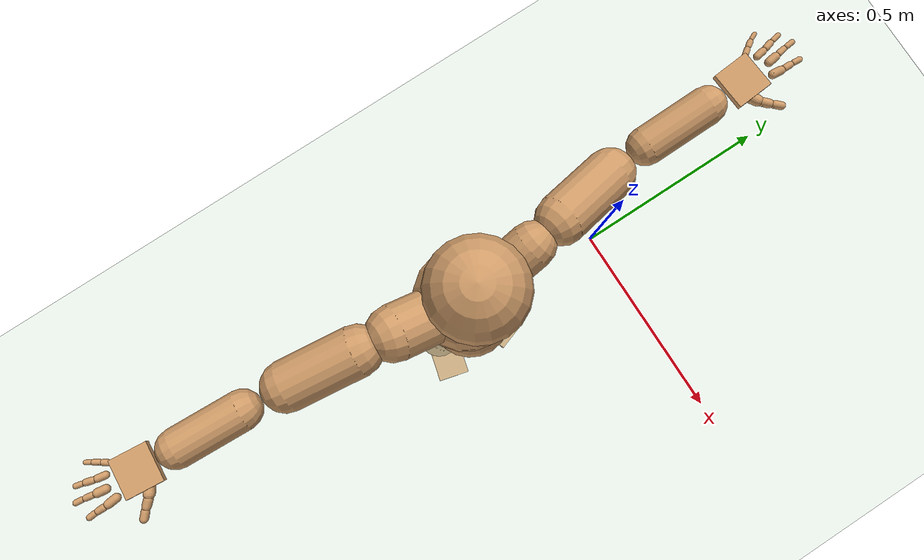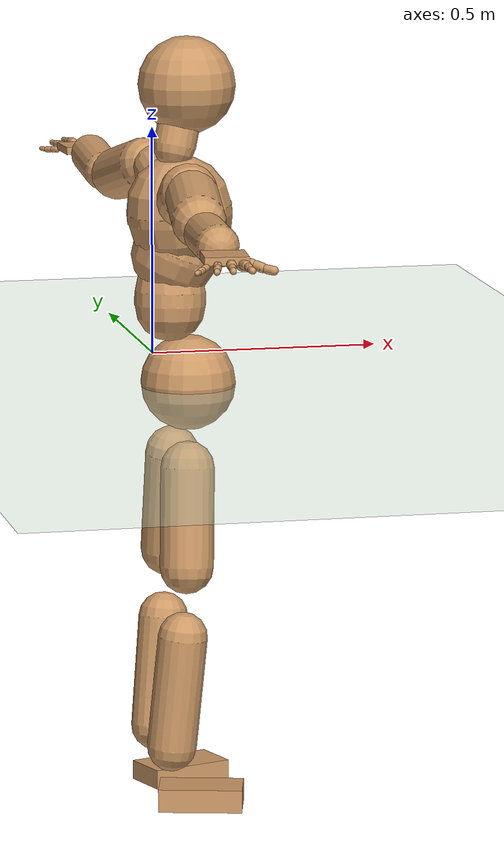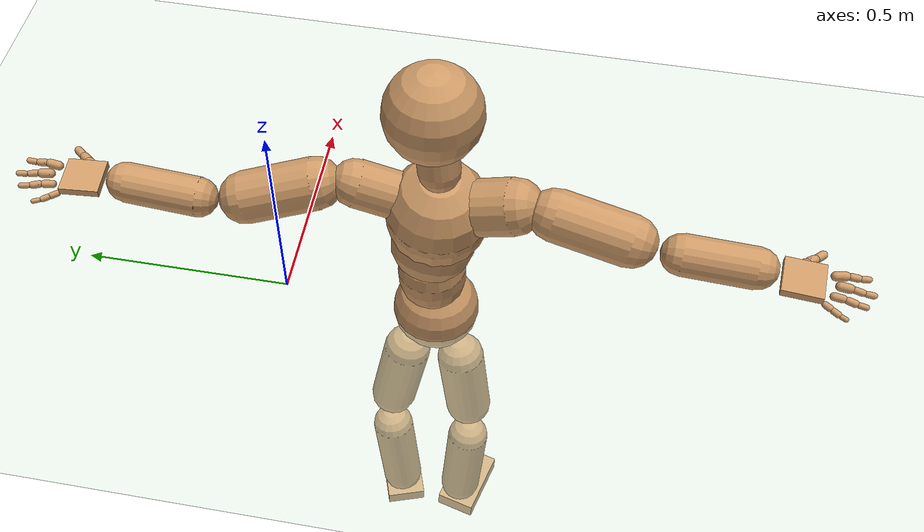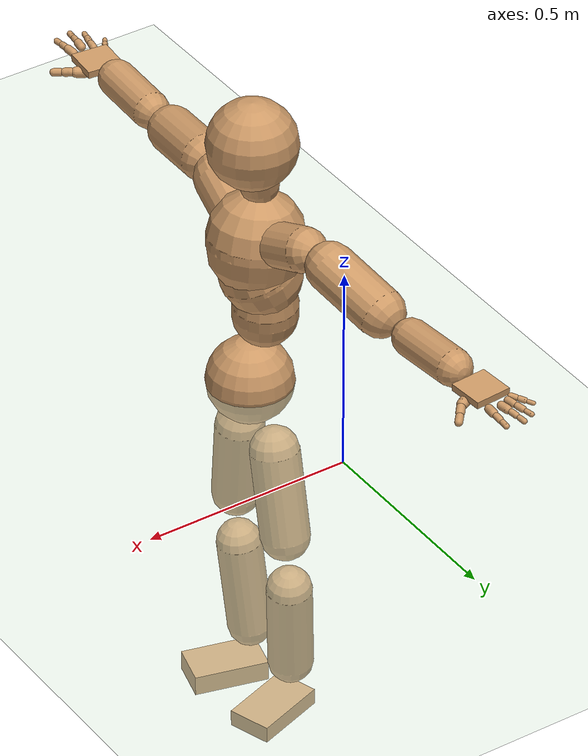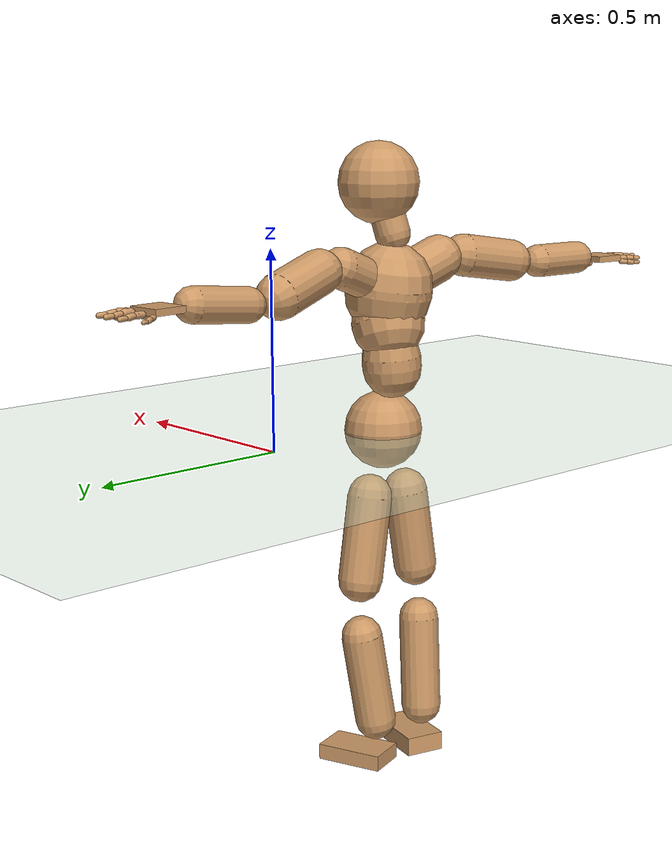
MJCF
<mujoco model="humanoid">
  <compiler coordinate="local" angle="radian"/>
  <default>
    <joint damping="0.0" armature="0.01" stiffness="0.0" limited="true"/>
    <geom conaffinity="1" condim="3" contype="7" margin="0.001" rgba="0.8 0.6 .4 1"/>
  </default>
  <asset>
    <texture type="skybox" builtin="gradient" rgb1=".4 .5 .6" rgb2="0 0 0" width="100" height="100"/>
    <texture builtin="flat" height="1278" mark="cross" markrgb="1 1 1" name="texgeom" random="0.01" rgb1="0.8 0.6 0.4" rgb2="0.8 0.6 0.4" type="cube" width="127"/>
    <texture builtin="checker" height="100" name="texplane" rgb1="0 0 0" rgb2="0.8 0.8 0.8" type="2d" width="100"/>
    <material name="MatPlane" reflectance="0.5" shininess="1" specular="1" texrepeat="60 60" texture="texplane"/>
    <material name="geom" texture="texgeom" texuniform="true"/>
  </asset>
  <worldbody>
    <light cutoff="100" diffuse="1 1 1" dir="-0 0 -1.3" directional="true" exponent="1" pos="0 0 1.3" specular=".1 .1 .1"/>
    <geom conaffinity="1" condim="3" name="floor" pos="0 0 0" rgba="0.8 0.9 0.8 1" size="100 100 .2" type="plane" material="MatPlane"/>
    <body name="Pelvis" pos="0.0014 -0.3677 0.0049">
      <freejoint name="Pelvis"/>
      <geom type="sphere" contype="1" conaffinity="1" density="500" size="0.1021" pos="0.0000 0.0000 0.0000" name="Pelvis"/>
      <body name="L_Hip" pos="-0.0197 0.0548 -0.0921">
        <joint name="L_Hip_x" type="hinge" pos="0 0 0" axis="1 0 0" stiffness="800" damping="80" armature="0.02" range="-180.0000 180.0000"/>
        <joint name="L_Hip_y" type="hinge" pos="0 0 0" axis="0 1 0" stiffness="800" damping="80" armature="0.02" range="-180.0000 180.0000"/>
        <joint name="L_Hip_z" type="hinge" pos="0 0 0" axis="0 0 1" stiffness="800" damping="80" armature="0.02" range="-180.0000 180.0000"/>
        <geom type="capsule" contype="1" conaffinity="1" density="500" fromto="-0.0011 0.0126 -0.0733 -0.0045 0.0504 -0.2933" size="0.0578" name="L_Hip"/>
        <body name="L_Knee" pos="-0.0056 0.063 -0.3666">
          <joint name="L_Knee_x" type="hinge" pos="0 0 0" axis="1 0 0" stiffness="800" damping="80" armature="0.02" range="-180.0000 180.0000"/>
          <joint name="L_Knee_y" type="hinge" pos="0 0 0" axis="0 1 0" stiffness="800" damping="80" armature="0.02" range="-180.0000 180.0000"/>
          <joint name="L_Knee_z" type="hinge" pos="0 0 0" axis="0 0 1" stiffness="800" damping="80" armature="0.02" range="-180.0000 180.0000"/>
          <geom type="capsule" contype="1" conaffinity="1" density="500" fromto="-0.0076 -0.0093 -0.0784 -0.0302 -0.0373 -0.3135" size="0.0536" name="L_Knee"/>
          <body name="L_Ankle" pos="-0.0378 -0.0466 -0.3919">
            <joint name="L_Ankle_x" type="hinge" pos="0 0 0" axis="1 0 0" stiffness="800" damping="80" armature="0.02" range="-180.0000 180.0000"/>
            <joint name="L_Ankle_y" type="hinge" pos="0 0 0" axis="0 1 0" stiffness="800" damping="80" armature="0.02" range="-180.0000 180.0000"/>
            <joint name="L_Ankle_z" type="hinge" pos="0 0 0" axis="0 0 1" stiffness="800" damping="80" armature="0.02" range="-180.0000 180.0000"/>
            <geom type="box" contype="1" conaffinity="1" density="500" pos="0.0651 0.0221 -0.0282" size="0.0897 0.0522 0.0207" quat="0.9866 0.0000 0.0000 0.1629" name="L_Ankle"/>
            <body name="L_Toe" pos="0.1301 0.0442 -0.0564">
              <joint name="L_Toe_x" type="hinge" pos="0 0 0" axis="1 0 0" stiffness="500" damping="50" armature="0.02" range="-180.0000 180.0000"/>
              <joint name="L_Toe_y" type="hinge" pos="0 0 0" axis="0 1 0" stiffness="500" damping="50" armature="0.02" range="-180.0000 180.0000"/>
              <joint name="L_Toe_z" type="hinge" pos="0 0 0" axis="0 0 1" stiffness="500" damping="50" armature="0.02" range="-180.0000 180.0000"/>
              <geom type="box" contype="1" conaffinity="1" density="500" pos="0.0000 0.0000 0.0289" size="0.001 0.0025 0.0011" quat="0.9859 0.0000 0.0000 0.1673" name="L_Toe"/>
            </body>
          </body>
        </body>
      </body>
      <body name="R_Hip" pos="-0.0128 -0.0569 -0.1027">
        <joint name="R_Hip_x" type="hinge" pos="0 0 0" axis="1 0 0" stiffness="800" damping="80" armature="0.02" range="-180.0000 180.0000"/>
        <joint name="R_Hip_y" type="hinge" pos="0 0 0" axis="0 1 0" stiffness="800" damping="80" armature="0.02" range="-180.0000 180.0000"/>
        <joint name="R_Hip_z" type="hinge" pos="0 0 0" axis="0 0 1" stiffness="800" damping="80" armature="0.02" range="-180.0000 180.0000"/>
        <geom type="capsule" contype="1" conaffinity="1" density="500" fromto="-0.0027 -0.0095 -0.0701 -0.0107 -0.0379 -0.2803" size="0.0576" name="R_Hip"/>
        <body name="R_Knee" pos="-0.0134 -0.0473 -0.3504">
          <joint name="R_Knee_x" type="hinge" pos="0 0 0" axis="1 0 0" stiffness="800" damping="80" armature="0.02" range="-180.0000 180.0000"/>
          <joint name="R_Knee_y" type="hinge" pos="0 0 0" axis="0 1 0" stiffness="800" damping="80" armature="0.02" range="-180.0000 180.0000"/>
          <joint name="R_Knee_z" type="hinge" pos="0 0 0" axis="0 0 1" stiffness="800" damping="80" armature="0.02" range="-180.0000 180.0000"/>
          <geom type="capsule" contype="1" conaffinity="1" density="500" fromto="-0.0073 0.0037 -0.0809 -0.0293 0.0150 -0.3235" size="0.0533" name="R_Knee"/>
          <body name="R_Ankle" pos="-0.0366 0.0187 -0.4044">
            <joint name="R_Ankle_x" type="hinge" pos="0 0 0" axis="1 0 0" stiffness="800" damping="80" armature="0.02" range="-180.0000 180.0000"/>
            <joint name="R_Ankle_y" type="hinge" pos="0 0 0" axis="0 1 0" stiffness="800" damping="80" armature="0.02" range="-180.0000 180.0000"/>
            <joint name="R_Ankle_z" type="hinge" pos="0 0 0" axis="0 0 1" stiffness="800" damping="80" armature="0.02" range="-180.0000 180.0000"/>
            <geom type="box" contype="1" conaffinity="1" density="500" pos="0.0683 -0.0176 -0.0278" size="0.0897 0.0522 0.0249" quat="0.9920 0.0000 0.0000 -0.1260" name="R_Ankle"/>
            <body name="R_Toe" pos="0.1367 -0.0353 -0.0556">
              <joint name="R_Toe_x" type="hinge" pos="0 0 0" axis="1 0 0" stiffness="500" damping="50" armature="0.02" range="-180.0000 180.0000"/>
              <joint name="R_Toe_y" type="hinge" pos="0 0 0" axis="0 1 0" stiffness="500" damping="50" armature="0.02" range="-180.0000 180.0000"/>
              <joint name="R_Toe_z" type="hinge" pos="0 0 0" axis="0 0 1" stiffness="500" damping="50" armature="0.02" range="-180.0000 180.0000"/>
              <geom type="box" contype="1" conaffinity="1" density="500" pos="0.0000 0.0000 0.0244" size="0.001 0.0025 0.0011" quat="0.9931 0.0000 0.0000 -0.1175" name="R_Toe"/>
            </body>
          </body>
        </body>
      </body>
      <body name="Torso" pos="-0.0394 -0.0002 0.1068">
        <joint name="Torso_x" type="hinge" pos="0 0 0" axis="1 0 0" stiffness="1000" damping="100" armature="0.02" range="-180.0000 180.0000"/>
        <joint name="Torso_y" type="hinge" pos="0 0 0" axis="0 1 0" stiffness="1000" damping="100" armature="0.02" range="-180.0000 180.0000"/>
        <joint name="Torso_z" type="hinge" pos="0 0 0" axis="0 0 1" stiffness="1000" damping="100" armature="0.02" range="-180.0000 180.0000"/>
        <geom type="capsule" contype="1" conaffinity="1" density="500" fromto="0.0022 0.0062 0.0897 0.0014 0.0042 0.0598" size="0.0762" name="Torso"/>
        <body name="Spine" pos="0.0036 0.0104 0.1494">
          <joint name="Spine_x" type="hinge" pos="0 0 0" axis="1 0 0" stiffness="1000" damping="100" armature="0.02" range="-180.0000 180.0000"/>
          <joint name="Spine_y" type="hinge" pos="0 0 0" axis="0 1 0" stiffness="1000" damping="100" armature="0.02" range="-180.0000 180.0000"/>
          <joint name="Spine_z" type="hinge" pos="0 0 0" axis="0 0 1" stiffness="1000" damping="100" armature="0.02" range="-180.0000 180.0000"/>
          <geom type="capsule" contype="1" conaffinity="1" density="500" fromto="0.0138 -0.0059 0.0350 0.0092 -0.0039 0.0234" size="0.0946" name="Spine"/>
          <body name="Chest" pos="0.023 -0.0099 0.0584">
            <joint name="Chest_x" type="hinge" pos="0 0 0" axis="1 0 0" stiffness="1000" damping="100" armature="0.02" range="-180.0000 180.0000"/>
            <joint name="Chest_y" type="hinge" pos="0 0 0" axis="0 1 0" stiffness="1000" damping="100" armature="0.02" range="-180.0000 180.0000"/>
            <joint name="Chest_z" type="hinge" pos="0 0 0" axis="0 0 1" stiffness="1000" damping="100" armature="0.02" range="-180.0000 180.0000"/>
            <geom type="capsule" contype="1" conaffinity="1" density="500" fromto="-0.0070 -0.0033 0.0626 -0.0046 -0.0022 0.0417" size="0.1126" name="Chest"/>
            <body name="Neck" pos="-0.0247 -0.0112 0.1625">
              <joint name="Neck_x" type="hinge" pos="0 0 0" axis="1 0 0" stiffness="500" damping="50" armature="0.02" range="-180.0000 180.0000"/>
              <joint name="Neck_y" type="hinge" pos="0 0 0" axis="0 1 0" stiffness="500" damping="50" armature="0.02" range="-180.0000 180.0000"/>
              <joint name="Neck_z" type="hinge" pos="0 0 0" axis="0 0 1" stiffness="500" damping="50" armature="0.02" range="-180.0000 180.0000"/>
              <geom type="capsule" contype="1" conaffinity="1" density="500" fromto="0.0076 0.0049 0.0320 0.0305 0.0196 0.1279" size="0.0453" name="Neck"/>
              <body name="Head" pos="0.0381 0.0244 0.1599">
                <joint name="Head_x" type="hinge" pos="0 0 0" axis="1 0 0" stiffness="500" damping="50" armature="0.02" range="-180.0000 180.0000"/>
                <joint name="Head_y" type="hinge" pos="0 0 0" axis="0 1 0" stiffness="500" damping="50" armature="0.02" range="-180.0000 180.0000"/>
                <joint name="Head_z" type="hinge" pos="0 0 0" axis="0 0 1" stiffness="500" damping="50" armature="0.02" range="-180.0000 180.0000"/>
                <geom type="sphere" contype="1" conaffinity="1" density="500" size="0.1043" pos="0.0000 0.0000 0.0000" name="Head"/>
              </body>
            </body>
            <body name="L_Thorax" pos="-0.0032 0.0458 0.0748">
              <joint name="L_Thorax_x" type="hinge" pos="0 0 0" axis="1 0 0" stiffness="500" damping="50" armature="0.02" range="-180.0000 180.0000"/>
              <joint name="L_Thorax_y" type="hinge" pos="0 0 0" axis="0 1 0" stiffness="500" damping="50" armature="0.02" range="-180.0000 180.0000"/>
              <joint name="L_Thorax_z" type="hinge" pos="0 0 0" axis="0 0 1" stiffness="500" damping="50" armature="0.02" range="-180.0000 180.0000"/>
              <geom type="capsule" contype="1" conaffinity="1" density="500" fromto="-0.0035 0.0312 0.0118 -0.0141 0.1249 0.0472" size="0.0522" name="L_Thorax"/>
              <body name="L_Shoulder" pos="-0.0176 0.1562 0.059">
                <joint name="L_Shoulder_x" type="hinge" pos="0 0 0" axis="1 0 0" stiffness="500" damping="50" armature="0.02" range="-180.0000 180.0000"/>
                <joint name="L_Shoulder_y" type="hinge" pos="0 0 0" axis="0 1 0" stiffness="500" damping="50" armature="0.02" range="-180.0000 180.0000"/>
                <joint name="L_Shoulder_z" type="hinge" pos="0 0 0" axis="0 0 1" stiffness="500" damping="50" armature="0.02" range="-180.0000 180.0000"/>
                <geom type="capsule" contype="1" conaffinity="1" density="500" fromto="-0.0096 0.0500 -0.0144 -0.0386 0.2001 -0.0576" size="0.0571" name="L_Shoulder"/>
                <body name="L_Elbow" pos="-0.0482 0.2502 -0.0719">
                  <joint name="L_Elbow_x" type="hinge" pos="0 0 0" axis="1 0 0" stiffness="500" damping="50" armature="0.02" range="-720.0000 720.0000"/>
                  <joint name="L_Elbow_y" type="hinge" pos="0 0 0" axis="0 1 0" stiffness="500" damping="50" armature="0.02" range="-720.0000 720.0000"/>
                  <joint name="L_Elbow_z" type="hinge" pos="0 0 0" axis="0 0 1" stiffness="500" damping="50" armature="0.02" range="-720.0000 720.0000"/>
                  <geom type="capsule" contype="1" conaffinity="1" density="500" fromto="-0.0002 0.0521 0.0051 -0.0007 0.2083 0.0203" size="0.0434" name="L_Elbow"/>
                  <body name="L_Wrist" pos="-0.0009 0.2604 0.0254">
                    <joint name="L_Wrist_x" type="hinge" pos="0 0 0" axis="1 0 0" stiffness="300" damping="30" armature="0.02" range="-180.0000 180.0000"/>
                    <joint name="L_Wrist_y" type="hinge" pos="0 0 0" axis="0 1 0" stiffness="300" damping="30" armature="0.02" range="-180.0000 180.0000"/>
                    <joint name="L_Wrist_z" type="hinge" pos="0 0 0" axis="0 0 1" stiffness="300" damping="30" armature="0.02" range="-180.0000 180.0000"/>
                    <geom type="box" contype="1" conaffinity="1" density="500" pos="-0.0034 0.0434 -0.0055" size="0.0429 0.0436 0.0082" quat="0.7340 0.0000 0.0000 -0.6791" name="L_Wrist"/>
                    <body name="L_Index1" pos="0.0202 0.1019 -0.0077">
                      <joint name="L_Index1_x" type="hinge" pos="0 0 0" axis="1 0 0" stiffness="100" damping="10" armature="0.02" range="-180.0000 180.0000"/>
                      <joint name="L_Index1_y" type="hinge" pos="0 0 0" axis="0 1 0" stiffness="100" damping="10" armature="0.02" range="-180.0000 180.0000"/>
                      <joint name="L_Index1_z" type="hinge" pos="0 0 0" axis="0 0 1" stiffness="100" damping="10" armature="0.02" range="-180.0000 180.0000"/>
                      <geom type="capsule" contype="1" conaffinity="1" density="500" fromto="0.0007 0.0065 0.0004 0.0029 0.0262 0.0015" size="0.0098" name="L_Index1"/>
                      <body name="L_Index2" pos="0.0036 0.0327 0.0018">
                        <joint name="L_Index2_x" type="hinge" pos="0 0 0" axis="1 0 0" stiffness="100" damping="10" armature="0.02" range="-180.0000 180.0000"/>
                        <joint name="L_Index2_y" type="hinge" pos="0 0 0" axis="0 1 0" stiffness="100" damping="10" armature="0.02" range="-180.0000 180.0000"/>
                        <joint name="L_Index2_z" type="hinge" pos="0 0 0" axis="0 0 1" stiffness="100" damping="10" armature="0.02" range="-180.0000 180.0000"/>
                        <geom type="capsule" contype="1" conaffinity="1" density="500" fromto="-0.0001 0.0046 -0.0005 -0.0002 0.0184 -0.0021" size="0.0079" name="L_Index2"/>
                        <body name="L_Index3" pos="-0.0003 0.023 -0.0026">
                          <joint name="L_Index3_x" type="hinge" pos="0 0 0" axis="1 0 0" stiffness="100" damping="10" armature="0.02" range="-180.0000 180.0000"/>
                          <joint name="L_Index3_y" type="hinge" pos="0 0 0" axis="0 1 0" stiffness="100" damping="10" armature="0.02" range="-180.0000 180.0000"/>
                          <joint name="L_Index3_z" type="hinge" pos="0 0 0" axis="0 0 1" stiffness="100" damping="10" armature="0.02" range="-180.0000 180.0000"/>
                          <geom type="capsule" contype="1" conaffinity="1" density="500" fromto="0.0003 0.0050 -0.0001 0.0014 0.0200 -0.0005" size="0.0067" name="L_Index3"/>
                        </body>
                      </body>
                    </body>
                    <body name="L_Middle1" pos="-0.0048 0.1102 -0.005">
                      <joint name="L_Middle1_x" type="hinge" pos="0 0 0" axis="1 0 0" stiffness="100" damping="10" armature="0.02" range="-180.0000 180.0000"/>
                      <joint name="L_Middle1_y" type="hinge" pos="0 0 0" axis="0 1 0" stiffness="100" damping="10" armature="0.02" range="-180.0000 180.0000"/>
                      <joint name="L_Middle1_z" type="hinge" pos="0 0 0" axis="0 0 1" stiffness="100" damping="10" armature="0.02" range="-180.0000 180.0000"/>
                      <geom type="capsule" contype="1" conaffinity="1" density="500" fromto="-0.0009 0.0063 0.0001 -0.0035 0.0250 0.0004" size="0.0099" name="L_Middle1"/>
                      <body name="L_Middle2" pos="-0.0044 0.0313 0.0005">
                        <joint name="L_Middle2_x" type="hinge" pos="0 0 0" axis="1 0 0" stiffness="100" damping="10" armature="0.02" range="-180.0000 180.0000"/>
                        <joint name="L_Middle2_y" type="hinge" pos="0 0 0" axis="0 1 0" stiffness="100" damping="10" armature="0.02" range="-180.0000 180.0000"/>
                        <joint name="L_Middle2_z" type="hinge" pos="0 0 0" axis="0 0 1" stiffness="100" damping="10" armature="0.02" range="-180.0000 180.0000"/>
                        <geom type="capsule" contype="1" conaffinity="1" density="500" fromto="-0.0009 0.0048 -0.0005 -0.0035 0.0190 -0.0020" size="0.0073" name="L_Middle2"/>
                        <body name="L_Middle3" pos="-0.0044 0.0238 -0.0025">
                          <joint name="L_Middle3_x" type="hinge" pos="0 0 0" axis="1 0 0" stiffness="100" damping="10" armature="0.02" range="-180.0000 180.0000"/>
                          <joint name="L_Middle3_y" type="hinge" pos="0 0 0" axis="0 1 0" stiffness="100" damping="10" armature="0.02" range="-180.0000 180.0000"/>
                          <joint name="L_Middle3_z" type="hinge" pos="0 0 0" axis="0 0 1" stiffness="100" damping="10" armature="0.02" range="-180.0000 180.0000"/>
                          <geom type="capsule" contype="1" conaffinity="1" density="500" fromto="-0.0005 0.0052 -0.0001 -0.0019 0.0206 -0.0004" size="0.0064" name="L_Middle3"/>
                        </body>
                      </body>
                    </body>
                    <body name="L_Pinky1" pos="-0.047 0.085 -0.0141">
                      <joint name="L_Pinky1_x" type="hinge" pos="0 0 0" axis="1 0 0" stiffness="100" damping="10" armature="0.02" range="-180.0000 180.0000"/>
                      <joint name="L_Pinky1_y" type="hinge" pos="0 0 0" axis="0 1 0" stiffness="100" damping="10" armature="0.02" range="-180.0000 180.0000"/>
                      <joint name="L_Pinky1_z" type="hinge" pos="0 0 0" axis="0 0 1" stiffness="100" damping="10" armature="0.02" range="-180.0000 180.0000"/>
                      <geom type="capsule" contype="1" conaffinity="1" density="500" fromto="-0.0024 0.0034 -0.0003 -0.0094 0.0135 -0.0014" size="0.007" name="L_Pinky1"/>
                      <body name="L_Pinky2" pos="-0.0118 0.0168 -0.0017">
                        <joint name="L_Pinky2_x" type="hinge" pos="0 0 0" axis="1 0 0" stiffness="100" damping="10" armature="0.02" range="-180.0000 180.0000"/>
                        <joint name="L_Pinky2_y" type="hinge" pos="0 0 0" axis="0 1 0" stiffness="100" damping="10" armature="0.02" range="-180.0000 180.0000"/>
                        <joint name="L_Pinky2_z" type="hinge" pos="0 0 0" axis="0 0 1" stiffness="100" damping="10" armature="0.02" range="-180.0000 180.0000"/>
                        <geom type="capsule" contype="1" conaffinity="1" density="500" fromto="-0.0022 0.0033 -0.0004 -0.0087 0.0132 -0.0016" size="0.0067" name="L_Pinky2"/>
                        <body name="L_Pinky3" pos="-0.0109 0.0165 -0.002">
                          <joint name="L_Pinky3_x" type="hinge" pos="0 0 0" axis="1 0 0" stiffness="100" damping="10" armature="0.02" range="-180.0000 180.0000"/>
                          <joint name="L_Pinky3_y" type="hinge" pos="0 0 0" axis="0 1 0" stiffness="100" damping="10" armature="0.02" range="-180.0000 180.0000"/>
                          <joint name="L_Pinky3_z" type="hinge" pos="0 0 0" axis="0 0 1" stiffness="100" damping="10" armature="0.02" range="-180.0000 180.0000"/>
                          <geom type="capsule" contype="1" conaffinity="1" density="500" fromto="-0.0018 0.0037 0.0000 -0.0071 0.0148 0.0000" size="0.0051" name="L_Pinky3"/>
                        </body>
                      </body>
                    </body>
                    <body name="L_Ring1" pos="-0.0297 0.0983 -0.0084">
                      <joint name="L_Ring1_x" type="hinge" pos="0 0 0" axis="1 0 0" stiffness="100" damping="10" armature="0.02" range="-180.0000 180.0000"/>
                      <joint name="L_Ring1_y" type="hinge" pos="0 0 0" axis="0 1 0" stiffness="100" damping="10" armature="0.02" range="-180.0000 180.0000"/>
                      <joint name="L_Ring1_z" type="hinge" pos="0 0 0" axis="0 0 1" stiffness="100" damping="10" armature="0.02" range="-180.0000 180.0000"/>
                      <geom type="capsule" contype="1" conaffinity="1" density="500" fromto="-0.0010 0.0058 0.0001 -0.0040 0.0231 0.0003" size="0.0084" name="L_Ring1"/>
                      <body name="L_Ring2" pos="-0.005 0.0289 0.0004">
                        <joint name="L_Ring2_x" type="hinge" pos="0 0 0" axis="1 0 0" stiffness="100" damping="10" armature="0.02" range="-180.0000 180.0000"/>
                        <joint name="L_Ring2_y" type="hinge" pos="0 0 0" axis="0 1 0" stiffness="100" damping="10" armature="0.02" range="-180.0000 180.0000"/>
                        <joint name="L_Ring2_z" type="hinge" pos="0 0 0" axis="0 0 1" stiffness="100" damping="10" armature="0.02" range="-180.0000 180.0000"/>
                        <geom type="capsule" contype="1" conaffinity="1" density="500" fromto="-0.0013 0.0047 -0.0005 -0.0054 0.0187 -0.0019" size="0.0078" name="L_Ring2"/>
                        <body name="L_Ring3" pos="-0.0067 0.0234 -0.0024">
                          <joint name="L_Ring3_x" type="hinge" pos="0 0 0" axis="1 0 0" stiffness="100" damping="10" armature="0.02" range="-180.0000 180.0000"/>
                          <joint name="L_Ring3_y" type="hinge" pos="0 0 0" axis="0 1 0" stiffness="100" damping="10" armature="0.02" range="-180.0000 180.0000"/>
                          <joint name="L_Ring3_z" type="hinge" pos="0 0 0" axis="0 0 1" stiffness="100" damping="10" armature="0.02" range="-180.0000 180.0000"/>
                          <geom type="capsule" contype="1" conaffinity="1" density="500" fromto="-0.0009 0.0051 -0.0001 -0.0038 0.0203 -0.0003" size="0.006" name="L_Ring3"/>
                        </body>
                      </body>
                    </body>
                    <body name="L_Thumb1" pos="0.0274 0.0391 -0.02">
                      <joint name="L_Thumb1_x" type="hinge" pos="0 0 0" axis="1 0 0" stiffness="100" damping="10" armature="0.02" range="-180.0000 180.0000"/>
                      <joint name="L_Thumb1_y" type="hinge" pos="0 0 0" axis="0 1 0" stiffness="100" damping="10" armature="0.02" range="-180.0000 180.0000"/>
                      <joint name="L_Thumb1_z" type="hinge" pos="0 0 0" axis="0 0 1" stiffness="100" damping="10" armature="0.02" range="-180.0000 180.0000"/>
                      <geom type="capsule" contype="1" conaffinity="1" density="500" fromto="0.0055 0.0032 0.0004 0.0218 0.0128 0.0017" size="0.0128" name="L_Thumb1"/>
                      <body name="L_Thumb2" pos="0.0273 0.0161 0.0021">
                        <joint name="L_Thumb2_x" type="hinge" pos="0 0 0" axis="1 0 0" stiffness="100" damping="10" armature="0.02" range="-180.0000 180.0000"/>
                        <joint name="L_Thumb2_y" type="hinge" pos="0 0 0" axis="0 1 0" stiffness="100" damping="10" armature="0.02" range="-180.0000 180.0000"/>
                        <joint name="L_Thumb2_z" type="hinge" pos="0 0 0" axis="0 0 1" stiffness="100" damping="10" armature="0.02" range="-180.0000 180.0000"/>
                        <geom type="capsule" contype="1" conaffinity="1" density="500" fromto="0.0034 0.0040 -0.0010 0.0136 0.0158 -0.0041" size="0.0102" name="L_Thumb2"/>
                        <body name="L_Thumb3" pos="0.017 0.0198 -0.0051">
                          <joint name="L_Thumb3_x" type="hinge" pos="0 0 0" axis="1 0 0" stiffness="100" damping="10" armature="0.02" range="-180.0000 180.0000"/>
                          <joint name="L_Thumb3_y" type="hinge" pos="0 0 0" axis="0 1 0" stiffness="100" damping="10" armature="0.02" range="-180.0000 180.0000"/>
                          <joint name="L_Thumb3_z" type="hinge" pos="0 0 0" axis="0 0 1" stiffness="100" damping="10" armature="0.02" range="-180.0000 180.0000"/>
                          <geom type="capsule" contype="1" conaffinity="1" density="500" fromto="0.0038 0.0044 -0.0006 0.0152 0.0174 -0.0025" size="0.0092" name="L_Thumb3"/>
                        </body>
                      </body>
                    </body>
                  </body>
                </body>
              </body>
            </body>
            <body name="R_Thorax" pos="-0.0069 -0.051 0.0755">
              <joint name="R_Thorax_x" type="hinge" pos="0 0 0" axis="1 0 0" stiffness="500" damping="50" armature="0.02" range="-180.0000 180.0000"/>
              <joint name="R_Thorax_y" type="hinge" pos="0 0 0" axis="0 1 0" stiffness="500" damping="50" armature="0.02" range="-180.0000 180.0000"/>
              <joint name="R_Thorax_z" type="hinge" pos="0 0 0" axis="0 0 1" stiffness="500" damping="50" armature="0.02" range="-180.0000 180.0000"/>
              <geom type="capsule" contype="1" conaffinity="1" density="500" fromto="-0.0033 -0.0288 0.0114 -0.0131 -0.1153 0.0456" size="0.0616" name="R_Thorax"/>
              <body name="R_Shoulder" pos="-0.0164 -0.1441 0.057">
                <joint name="R_Shoulder_x" type="hinge" pos="0 0 0" axis="1 0 0" stiffness="500" damping="50" armature="0.02" range="-180.0000 180.0000"/>
                <joint name="R_Shoulder_y" type="hinge" pos="0 0 0" axis="0 1 0" stiffness="500" damping="50" armature="0.02" range="-180.0000 180.0000"/>
                <joint name="R_Shoulder_z" type="hinge" pos="0 0 0" axis="0 0 1" stiffness="500" damping="50" armature="0.02" range="-180.0000 180.0000"/>
                <geom type="capsule" contype="1" conaffinity="1" density="500" fromto="-0.0068 -0.0537 -0.0082 -0.0270 -0.2150 -0.0327" size="0.0563" name="R_Shoulder"/>
                <body name="R_Elbow" pos="-0.0338 -0.2687 -0.0409">
                  <joint name="R_Elbow_x" type="hinge" pos="0 0 0" axis="1 0 0" stiffness="500" damping="50" armature="0.02" range="-720.0000 720.0000"/>
                  <joint name="R_Elbow_y" type="hinge" pos="0 0 0" axis="0 1 0" stiffness="500" damping="50" armature="0.02" range="-720.0000 720.0000"/>
                  <joint name="R_Elbow_z" type="hinge" pos="0 0 0" axis="0 0 1" stiffness="500" damping="50" armature="0.02" range="-720.0000 720.0000"/>
                  <geom type="capsule" contype="1" conaffinity="1" density="500" fromto="-0.0024 -0.0505 -0.0002 -0.0096 -0.2022 -0.0007" size="0.0444" name="R_Elbow"/>
                  <body name="R_Wrist" pos="-0.012 -0.2527 -0.0009">
                    <joint name="R_Wrist_x" type="hinge" pos="0 0 0" axis="1 0 0" stiffness="300" damping="30" armature="0.02" range="-180.0000 180.0000"/>
                    <joint name="R_Wrist_y" type="hinge" pos="0 0 0" axis="0 1 0" stiffness="300" damping="30" armature="0.02" range="-180.0000 180.0000"/>
                    <joint name="R_Wrist_z" type="hinge" pos="0 0 0" axis="0 0 1" stiffness="300" damping="30" armature="0.02" range="-180.0000 180.0000"/>
                    <geom type="box" contype="1" conaffinity="1" density="500" pos="-0.0039 -0.0432 -0.0073" size="0.0429 0.0446 0.0084" quat="0.7379 0.0000 0.0000 0.6749" name="R_Wrist"/>
                    <body name="R_Index1" pos="0.0193 -0.1015 -0.0113">
                      <joint name="R_Index1_x" type="hinge" pos="0 0 0" axis="1 0 0" stiffness="100" damping="10" armature="0.02" range="-180.0000 180.0000"/>
                      <joint name="R_Index1_y" type="hinge" pos="0 0 0" axis="0 1 0" stiffness="100" damping="10" armature="0.02" range="-180.0000 180.0000"/>
                      <joint name="R_Index1_z" type="hinge" pos="0 0 0" axis="0 0 1" stiffness="100" damping="10" armature="0.02" range="-180.0000 180.0000"/>
                      <geom type="capsule" contype="1" conaffinity="1" density="500" fromto="0.0007 -0.0065 0.0004 0.0029 -0.0262 0.0015" size="0.0098" name="R_Index1"/>
                      <body name="R_Index2" pos="0.0036 -0.0327 0.0018">
                        <joint name="R_Index2_x" type="hinge" pos="0 0 0" axis="1 0 0" stiffness="100" damping="10" armature="0.02" range="-180.0000 180.0000"/>
                        <joint name="R_Index2_y" type="hinge" pos="0 0 0" axis="0 1 0" stiffness="100" damping="10" armature="0.02" range="-180.0000 180.0000"/>
                        <joint name="R_Index2_z" type="hinge" pos="0 0 0" axis="0 0 1" stiffness="100" damping="10" armature="0.02" range="-180.0000 180.0000"/>
                        <geom type="capsule" contype="1" conaffinity="1" density="500" fromto="-0.0001 -0.0046 -0.0005 -0.0002 -0.0184 -0.0021" size="0.0079" name="R_Index2"/>
                        <body name="R_Index3" pos="-0.0003 -0.023 -0.0026">
                          <joint name="R_Index3_x" type="hinge" pos="0 0 0" axis="1 0 0" stiffness="100" damping="10" armature="0.02" range="-180.0000 180.0000"/>
                          <joint name="R_Index3_y" type="hinge" pos="0 0 0" axis="0 1 0" stiffness="100" damping="10" armature="0.02" range="-180.0000 180.0000"/>
                          <joint name="R_Index3_z" type="hinge" pos="0 0 0" axis="0 0 1" stiffness="100" damping="10" armature="0.02" range="-180.0000 180.0000"/>
                          <geom type="capsule" contype="1" conaffinity="1" density="500" fromto="0.0003 -0.0042 -0.0001 0.0014 -0.0168 -0.0005" size="0.007" name="R_Index3"/>
                        </body>
                      </body>
                    </body>
                    <body name="R_Middle1" pos="-0.0057 -0.1097 -0.0086">
                      <joint name="R_Middle1_x" type="hinge" pos="0 0 0" axis="1 0 0" stiffness="100" damping="10" armature="0.02" range="-180.0000 180.0000"/>
                      <joint name="R_Middle1_y" type="hinge" pos="0 0 0" axis="0 1 0" stiffness="100" damping="10" armature="0.02" range="-180.0000 180.0000"/>
                      <joint name="R_Middle1_z" type="hinge" pos="0 0 0" axis="0 0 1" stiffness="100" damping="10" armature="0.02" range="-180.0000 180.0000"/>
                      <geom type="capsule" contype="1" conaffinity="1" density="500" fromto="-0.0009 -0.0063 0.0001 -0.0035 -0.0250 0.0004" size="0.0099" name="R_Middle1"/>
                      <body name="R_Middle2" pos="-0.0044 -0.0313 0.0005">
                        <joint name="R_Middle2_x" type="hinge" pos="0 0 0" axis="1 0 0" stiffness="100" damping="10" armature="0.02" range="-180.0000 180.0000"/>
                        <joint name="R_Middle2_y" type="hinge" pos="0 0 0" axis="0 1 0" stiffness="100" damping="10" armature="0.02" range="-180.0000 180.0000"/>
                        <joint name="R_Middle2_z" type="hinge" pos="0 0 0" axis="0 0 1" stiffness="100" damping="10" armature="0.02" range="-180.0000 180.0000"/>
                        <geom type="capsule" contype="1" conaffinity="1" density="500" fromto="-0.0009 -0.0048 -0.0005 -0.0035 -0.0190 -0.0020" size="0.0073" name="R_Middle2"/>
                        <body name="R_Middle3" pos="-0.0044 -0.0238 -0.0025">
                          <joint name="R_Middle3_x" type="hinge" pos="0 0 0" axis="1 0 0" stiffness="100" damping="10" armature="0.02" range="-180.0000 180.0000"/>
                          <joint name="R_Middle3_y" type="hinge" pos="0 0 0" axis="0 1 0" stiffness="100" damping="10" armature="0.02" range="-180.0000 180.0000"/>
                          <joint name="R_Middle3_z" type="hinge" pos="0 0 0" axis="0 0 1" stiffness="100" damping="10" armature="0.02" range="-180.0000 180.0000"/>
                          <geom type="capsule" contype="1" conaffinity="1" density="500" fromto="-0.0005 -0.0044 -0.0001 -0.0019 -0.0174 -0.0004" size="0.0067" name="R_Middle3"/>
                        </body>
                      </body>
                    </body>
                    <body name="R_Pinky1" pos="-0.048 -0.0845 -0.0177">
                      <joint name="R_Pinky1_x" type="hinge" pos="0 0 0" axis="1 0 0" stiffness="100" damping="10" armature="0.02" range="-180.0000 180.0000"/>
                      <joint name="R_Pinky1_y" type="hinge" pos="0 0 0" axis="0 1 0" stiffness="100" damping="10" armature="0.02" range="-180.0000 180.0000"/>
                      <joint name="R_Pinky1_z" type="hinge" pos="0 0 0" axis="0 0 1" stiffness="100" damping="10" armature="0.02" range="-180.0000 180.0000"/>
                      <geom type="capsule" contype="1" conaffinity="1" density="500" fromto="-0.0024 -0.0034 -0.0003 -0.0094 -0.0135 -0.0014" size="0.007" name="R_Pinky1"/>
                      <body name="R_Pinky2" pos="-0.0118 -0.0168 -0.0017">
                        <joint name="R_Pinky2_x" type="hinge" pos="0 0 0" axis="1 0 0" stiffness="100" damping="10" armature="0.02" range="-180.0000 180.0000"/>
                        <joint name="R_Pinky2_y" type="hinge" pos="0 0 0" axis="0 1 0" stiffness="100" damping="10" armature="0.02" range="-180.0000 180.0000"/>
                        <joint name="R_Pinky2_z" type="hinge" pos="0 0 0" axis="0 0 1" stiffness="100" damping="10" armature="0.02" range="-180.0000 180.0000"/>
                        <geom type="capsule" contype="1" conaffinity="1" density="500" fromto="-0.0022 -0.0033 -0.0004 -0.0087 -0.0132 -0.0016" size="0.0067" name="R_Pinky2"/>
                        <body name="R_Pinky3" pos="-0.0109 -0.0165 -0.002">
                          <joint name="R_Pinky3_x" type="hinge" pos="0 0 0" axis="1 0 0" stiffness="100" damping="10" armature="0.02" range="-180.0000 180.0000"/>
                          <joint name="R_Pinky3_y" type="hinge" pos="0 0 0" axis="0 1 0" stiffness="100" damping="10" armature="0.02" range="-180.0000 180.0000"/>
                          <joint name="R_Pinky3_z" type="hinge" pos="0 0 0" axis="0 0 1" stiffness="100" damping="10" armature="0.02" range="-180.0000 180.0000"/>
                          <geom type="capsule" contype="1" conaffinity="1" density="500" fromto="-0.0018 -0.0029 0.0000 -0.0071 -0.0116 0.0000" size="0.0053" name="R_Pinky3"/>
                        </body>
                      </body>
                    </body>
                    <body name="R_Ring1" pos="-0.0306 -0.0979 -0.0119">
                      <joint name="R_Ring1_x" type="hinge" pos="0 0 0" axis="1 0 0" stiffness="100" damping="10" armature="0.02" range="-180.0000 180.0000"/>
                      <joint name="R_Ring1_y" type="hinge" pos="0 0 0" axis="0 1 0" stiffness="100" damping="10" armature="0.02" range="-180.0000 180.0000"/>
                      <joint name="R_Ring1_z" type="hinge" pos="0 0 0" axis="0 0 1" stiffness="100" damping="10" armature="0.02" range="-180.0000 180.0000"/>
                      <geom type="capsule" contype="1" conaffinity="1" density="500" fromto="-0.0010 -0.0058 0.0001 -0.0040 -0.0231 0.0003" size="0.0084" name="R_Ring1"/>
                      <body name="R_Ring2" pos="-0.005 -0.0289 0.0004">
                        <joint name="R_Ring2_x" type="hinge" pos="0 0 0" axis="1 0 0" stiffness="100" damping="10" armature="0.02" range="-180.0000 180.0000"/>
                        <joint name="R_Ring2_y" type="hinge" pos="0 0 0" axis="0 1 0" stiffness="100" damping="10" armature="0.02" range="-180.0000 180.0000"/>
                        <joint name="R_Ring2_z" type="hinge" pos="0 0 0" axis="0 0 1" stiffness="100" damping="10" armature="0.02" range="-180.0000 180.0000"/>
                        <geom type="capsule" contype="1" conaffinity="1" density="500" fromto="-0.0013 -0.0047 -0.0005 -0.0054 -0.0187 -0.0019" size="0.0078" name="R_Ring2"/>
                        <body name="R_Ring3" pos="-0.0067 -0.0234 -0.0024">
                          <joint name="R_Ring3_x" type="hinge" pos="0 0 0" axis="1 0 0" stiffness="100" damping="10" armature="0.02" range="-180.0000 180.0000"/>
                          <joint name="R_Ring3_y" type="hinge" pos="0 0 0" axis="0 1 0" stiffness="100" damping="10" armature="0.02" range="-180.0000 180.0000"/>
                          <joint name="R_Ring3_z" type="hinge" pos="0 0 0" axis="0 0 1" stiffness="100" damping="10" armature="0.02" range="-180.0000 180.0000"/>
                          <geom type="capsule" contype="1" conaffinity="1" density="500" fromto="-0.0009 -0.0043 -0.0001 -0.0038 -0.0171 -0.0003" size="0.0063" name="R_Ring3"/>
                        </body>
                      </body>
                    </body>
                    <body name="R_Thumb1" pos="0.0264 -0.0386 -0.0235">
                      <joint name="R_Thumb1_x" type="hinge" pos="0 0 0" axis="1 0 0" stiffness="100" damping="10" armature="0.02" range="-180.0000 180.0000"/>
                      <joint name="R_Thumb1_y" type="hinge" pos="0 0 0" axis="0 1 0" stiffness="100" damping="10" armature="0.02" range="-180.0000 180.0000"/>
                      <joint name="R_Thumb1_z" type="hinge" pos="0 0 0" axis="0 0 1" stiffness="100" damping="10" armature="0.02" range="-180.0000 180.0000"/>
                      <geom type="capsule" contype="1" conaffinity="1" density="500" fromto="0.0055 -0.0032 0.0004 0.0218 -0.0128 0.0017" size="0.0128" name="R_Thumb1"/>
                      <body name="R_Thumb2" pos="0.0273 -0.0161 0.0021">
                        <joint name="R_Thumb2_x" type="hinge" pos="0 0 0" axis="1 0 0" stiffness="100" damping="10" armature="0.02" range="-180.0000 180.0000"/>
                        <joint name="R_Thumb2_y" type="hinge" pos="0 0 0" axis="0 1 0" stiffness="100" damping="10" armature="0.02" range="-180.0000 180.0000"/>
                        <joint name="R_Thumb2_z" type="hinge" pos="0 0 0" axis="0 0 1" stiffness="100" damping="10" armature="0.02" range="-180.0000 180.0000"/>
                        <geom type="capsule" contype="1" conaffinity="1" density="500" fromto="0.0034 -0.0040 -0.0010 0.0136 -0.0158 -0.0041" size="0.0102" name="R_Thumb2"/>
                        <body name="R_Thumb3" pos="0.017 -0.0198 -0.0051">
                          <joint name="R_Thumb3_x" type="hinge" pos="0 0 0" axis="1 0 0" stiffness="100" damping="10" armature="0.02" range="-180.0000 180.0000"/>
                          <joint name="R_Thumb3_y" type="hinge" pos="0 0 0" axis="0 1 0" stiffness="100" damping="10" armature="0.02" range="-180.0000 180.0000"/>
                          <joint name="R_Thumb3_z" type="hinge" pos="0 0 0" axis="0 0 1" stiffness="100" damping="10" armature="0.02" range="-180.0000 180.0000"/>
                          <geom type="capsule" contype="1" conaffinity="1" density="500" fromto="0.0038 -0.0036 -0.0006 0.0152 -0.0142 -0.0025" size="0.0094" name="R_Thumb3"/>
                        </body>
                      </body>
                    </body>
                  </body>
                </body>
              </body>
            </body>
          </body>
        </body>
      </body>
    </body>
  </worldbody>
  <actuator>
    <motor name="L_Hip_x" joint="L_Hip_x" gear="500"/>
    <motor name="L_Hip_y" joint="L_Hip_y" gear="500"/>
    <motor name="L_Hip_z" joint="L_Hip_z" gear="500"/>
    <motor name="L_Knee_x" joint="L_Knee_x" gear="500"/>
    <motor name="L_Knee_y" joint="L_Knee_y" gear="500"/>
    <motor name="L_Knee_z" joint="L_Knee_z" gear="500"/>
    <motor name="L_Ankle_x" joint="L_Ankle_x" gear="500"/>
    <motor name="L_Ankle_y" joint="L_Ankle_y" gear="500"/>
    <motor name="L_Ankle_z" joint="L_Ankle_z" gear="500"/>
    <motor name="L_Toe_x" joint="L_Toe_x" gear="500"/>
    <motor name="L_Toe_y" joint="L_Toe_y" gear="500"/>
    <motor name="L_Toe_z" joint="L_Toe_z" gear="500"/>
    <motor name="R_Hip_x" joint="R_Hip_x" gear="500"/>
    <motor name="R_Hip_y" joint="R_Hip_y" gear="500"/>
    <motor name="R_Hip_z" joint="R_Hip_z" gear="500"/>
    <motor name="R_Knee_x" joint="R_Knee_x" gear="500"/>
    <motor name="R_Knee_y" joint="R_Knee_y" gear="500"/>
    <motor name="R_Knee_z" joint="R_Knee_z" gear="500"/>
    <motor name="R_Ankle_x" joint="R_Ankle_x" gear="500"/>
    <motor name="R_Ankle_y" joint="R_Ankle_y" gear="500"/>
    <motor name="R_Ankle_z" joint="R_Ankle_z" gear="500"/>
    <motor name="R_Toe_x" joint="R_Toe_x" gear="500"/>
    <motor name="R_Toe_y" joint="R_Toe_y" gear="500"/>
    <motor name="R_Toe_z" joint="R_Toe_z" gear="500"/>
    <motor name="Torso_x" joint="Torso_x" gear="500"/>
    <motor name="Torso_y" joint="Torso_y" gear="500"/>
    <motor name="Torso_z" joint="Torso_z" gear="500"/>
    <motor name="Spine_x" joint="Spine_x" gear="500"/>
    <motor name="Spine_y" joint="Spine_y" gear="500"/>
    <motor name="Spine_z" joint="Spine_z" gear="500"/>
    <motor name="Chest_x" joint="Chest_x" gear="500"/>
    <motor name="Chest_y" joint="Chest_y" gear="500"/>
    <motor name="Chest_z" joint="Chest_z" gear="500"/>
    <motor name="Neck_x" joint="Neck_x" gear="500"/>
    <motor name="Neck_y" joint="Neck_y" gear="500"/>
    <motor name="Neck_z" joint="Neck_z" gear="500"/>
    <motor name="Head_x" joint="Head_x" gear="500"/>
    <motor name="Head_y" joint="Head_y" gear="500"/>
    <motor name="Head_z" joint="Head_z" gear="500"/>
    <motor name="L_Thorax_x" joint="L_Thorax_x" gear="500"/>
    <motor name="L_Thorax_y" joint="L_Thorax_y" gear="500"/>
    <motor name="L_Thorax_z" joint="L_Thorax_z" gear="500"/>
    <motor name="L_Shoulder_x" joint="L_Shoulder_x" gear="500"/>
    <motor name="L_Shoulder_y" joint="L_Shoulder_y" gear="500"/>
    <motor name="L_Shoulder_z" joint="L_Shoulder_z" gear="500"/>
    <motor name="L_Elbow_x" joint="L_Elbow_x" gear="500"/>
    <motor name="L_Elbow_y" joint="L_Elbow_y" gear="500"/>
    <motor name="L_Elbow_z" joint="L_Elbow_z" gear="500"/>
    <motor name="L_Wrist_x" joint="L_Wrist_x" gear="500"/>
    <motor name="L_Wrist_y" joint="L_Wrist_y" gear="500"/>
    <motor name="L_Wrist_z" joint="L_Wrist_z" gear="500"/>
    <motor name="L_Index1_x" joint="L_Index1_x" gear="500"/>
    <motor name="L_Index1_y" joint="L_Index1_y" gear="500"/>
    <motor name="L_Index1_z" joint="L_Index1_z" gear="500"/>
    <motor name="L_Index2_x" joint="L_Index2_x" gear="500"/>
    <motor name="L_Index2_y" joint="L_Index2_y" gear="500"/>
    <motor name="L_Index2_z" joint="L_Index2_z" gear="500"/>
    <motor name="L_Index3_x" joint="L_Index3_x" gear="500"/>
    <motor name="L_Index3_y" joint="L_Index3_y" gear="500"/>
    <motor name="L_Index3_z" joint="L_Index3_z" gear="500"/>
    <motor name="L_Middle1_x" joint="L_Middle1_x" gear="500"/>
    <motor name="L_Middle1_y" joint="L_Middle1_y" gear="500"/>
    <motor name="L_Middle1_z" joint="L_Middle1_z" gear="500"/>
    <motor name="L_Middle2_x" joint="L_Middle2_x" gear="500"/>
    <motor name="L_Middle2_y" joint="L_Middle2_y" gear="500"/>
    <motor name="L_Middle2_z" joint="L_Middle2_z" gear="500"/>
    <motor name="L_Middle3_x" joint="L_Middle3_x" gear="500"/>
    <motor name="L_Middle3_y" joint="L_Middle3_y" gear="500"/>
    <motor name="L_Middle3_z" joint="L_Middle3_z" gear="500"/>
    <motor name="L_Pinky1_x" joint="L_Pinky1_x" gear="500"/>
    <motor name="L_Pinky1_y" joint="L_Pinky1_y" gear="500"/>
    <motor name="L_Pinky1_z" joint="L_Pinky1_z" gear="500"/>
    <motor name="L_Pinky2_x" joint="L_Pinky2_x" gear="500"/>
    <motor name="L_Pinky2_y" joint="L_Pinky2_y" gear="500"/>
    <motor name="L_Pinky2_z" joint="L_Pinky2_z" gear="500"/>
    <motor name="L_Pinky3_x" joint="L_Pinky3_x" gear="500"/>
    <motor name="L_Pinky3_y" joint="L_Pinky3_y" gear="500"/>
    <motor name="L_Pinky3_z" joint="L_Pinky3_z" gear="500"/>
    <motor name="L_Ring1_x" joint="L_Ring1_x" gear="500"/>
    <motor name="L_Ring1_y" joint="L_Ring1_y" gear="500"/>
    <motor name="L_Ring1_z" joint="L_Ring1_z" gear="500"/>
    <motor name="L_Ring2_x" joint="L_Ring2_x" gear="500"/>
    <motor name="L_Ring2_y" joint="L_Ring2_y" gear="500"/>
    <motor name="L_Ring2_z" joint="L_Ring2_z" gear="500"/>
    <motor name="L_Ring3_x" joint="L_Ring3_x" gear="500"/>
    <motor name="L_Ring3_y" joint="L_Ring3_y" gear="500"/>
    <motor name="L_Ring3_z" joint="L_Ring3_z" gear="500"/>
    <motor name="L_Thumb1_x" joint="L_Thumb1_x" gear="500"/>
    <motor name="L_Thumb1_y" joint="L_Thumb1_y" gear="500"/>
    <motor name="L_Thumb1_z" joint="L_Thumb1_z" gear="500"/>
    <motor name="L_Thumb2_x" joint="L_Thumb2_x" gear="500"/>
    <motor name="L_Thumb2_y" joint="L_Thumb2_y" gear="500"/>
    <motor name="L_Thumb2_z" joint="L_Thumb2_z" gear="500"/>
    <motor name="L_Thumb3_x" joint="L_Thumb3_x" gear="500"/>
    <motor name="L_Thumb3_y" joint="L_Thumb3_y" gear="500"/>
    <motor name="L_Thumb3_z" joint="L_Thumb3_z" gear="500"/>
    <motor name="R_Thorax_x" joint="R_Thorax_x" gear="500"/>
    <motor name="R_Thorax_y" joint="R_Thorax_y" gear="500"/>
    <motor name="R_Thorax_z" joint="R_Thorax_z" gear="500"/>
    <motor name="R_Shoulder_x" joint="R_Shoulder_x" gear="500"/>
    <motor name="R_Shoulder_y" joint="R_Shoulder_y" gear="500"/>
    <motor name="R_Shoulder_z" joint="R_Shoulder_z" gear="500"/>
    <motor name="R_Elbow_x" joint="R_Elbow_x" gear="500"/>
    <motor name="R_Elbow_y" joint="R_Elbow_y" gear="500"/>
    <motor name="R_Elbow_z" joint="R_Elbow_z" gear="500"/>
    <motor name="R_Wrist_x" joint="R_Wrist_x" gear="500"/>
    <motor name="R_Wrist_y" joint="R_Wrist_y" gear="500"/>
    <motor name="R_Wrist_z" joint="R_Wrist_z" gear="500"/>
    <motor name="R_Index1_x" joint="R_Index1_x" gear="500"/>
    <motor name="R_Index1_y" joint="R_Index1_y" gear="500"/>
    <motor name="R_Index1_z" joint="R_Index1_z" gear="500"/>
    <motor name="R_Index2_x" joint="R_Index2_x" gear="500"/>
    <motor name="R_Index2_y" joint="R_Index2_y" gear="500"/>
    <motor name="R_Index2_z" joint="R_Index2_z" gear="500"/>
    <motor name="R_Index3_x" joint="R_Index3_x" gear="500"/>
    <motor name="R_Index3_y" joint="R_Index3_y" gear="500"/>
    <motor name="R_Index3_z" joint="R_Index3_z" gear="500"/>
    <motor name="R_Middle1_x" joint="R_Middle1_x" gear="500"/>
    <motor name="R_Middle1_y" joint="R_Middle1_y" gear="500"/>
    <motor name="R_Middle1_z" joint="R_Middle1_z" gear="500"/>
    <motor name="R_Middle2_x" joint="R_Middle2_x" gear="500"/>
    <motor name="R_Middle2_y" joint="R_Middle2_y" gear="500"/>
    <motor name="R_Middle2_z" joint="R_Middle2_z" gear="500"/>
    <motor name="R_Middle3_x" joint="R_Middle3_x" gear="500"/>
    <motor name="R_Middle3_y" joint="R_Middle3_y" gear="500"/>
    <motor name="R_Middle3_z" joint="R_Middle3_z" gear="500"/>
    <motor name="R_Pinky1_x" joint="R_Pinky1_x" gear="500"/>
    <motor name="R_Pinky1_y" joint="R_Pinky1_y" gear="500"/>
    <motor name="R_Pinky1_z" joint="R_Pinky1_z" gear="500"/>
    <motor name="R_Pinky2_x" joint="R_Pinky2_x" gear="500"/>
    <motor name="R_Pinky2_y" joint="R_Pinky2_y" gear="500"/>
    <motor name="R_Pinky2_z" joint="R_Pinky2_z" gear="500"/>
    <motor name="R_Pinky3_x" joint="R_Pinky3_x" gear="500"/>
    <motor name="R_Pinky3_y" joint="R_Pinky3_y" gear="500"/>
    <motor name="R_Pinky3_z" joint="R_Pinky3_z" gear="500"/>
    <motor name="R_Ring1_x" joint="R_Ring1_x" gear="500"/>
    <motor name="R_Ring1_y" joint="R_Ring1_y" gear="500"/>
    <motor name="R_Ring1_z" joint="R_Ring1_z" gear="500"/>
    <motor name="R_Ring2_x" joint="R_Ring2_x" gear="500"/>
    <motor name="R_Ring2_y" joint="R_Ring2_y" gear="500"/>
    <motor name="R_Ring2_z" joint="R_Ring2_z" gear="500"/>
    <motor name="R_Ring3_x" joint="R_Ring3_x" gear="500"/>
    <motor name="R_Ring3_y" joint="R_Ring3_y" gear="500"/>
    <motor name="R_Ring3_z" joint="R_Ring3_z" gear="500"/>
    <motor name="R_Thumb1_x" joint="R_Thumb1_x" gear="500"/>
    <motor name="R_Thumb1_y" joint="R_Thumb1_y" gear="500"/>
    <motor name="R_Thumb1_z" joint="R_Thumb1_z" gear="500"/>
    <motor name="R_Thumb2_x" joint="R_Thumb2_x" gear="500"/>
    <motor name="R_Thumb2_y" joint="R_Thumb2_y" gear="500"/>
    <motor name="R_Thumb2_z" joint="R_Thumb2_z" gear="500"/>
    <motor name="R_Thumb3_x" joint="R_Thumb3_x" gear="500"/>
    <motor name="R_Thumb3_y" joint="R_Thumb3_y" gear="500"/>
    <motor name="R_Thumb3_z" joint="R_Thumb3_z" gear="500"/>
  </actuator>
  <contact>
    <exclude body1="Torso" body2="Chest"/>
    <exclude body1="Head" body2="Chest"/>
    <exclude body1="R_Knee" body2="R_Toe"/>
    <exclude body1="R_Knee" body2="L_Ankle"/>
    <exclude body1="R_Knee" body2="L_Toe"/>
    <exclude body1="L_Knee" body2="L_Toe"/>
    <exclude body1="L_Knee" body2="R_Ankle"/>
    <exclude body1="L_Knee" body2="R_Toe"/>
    <exclude body1="L_Shoulder" body2="Chest"/>
    <exclude body1="R_Shoulder" body2="Chest"/>
  </contact>
  <sensor/>
  <size njmax="700" nconmax="700"/>
</mujoco>
